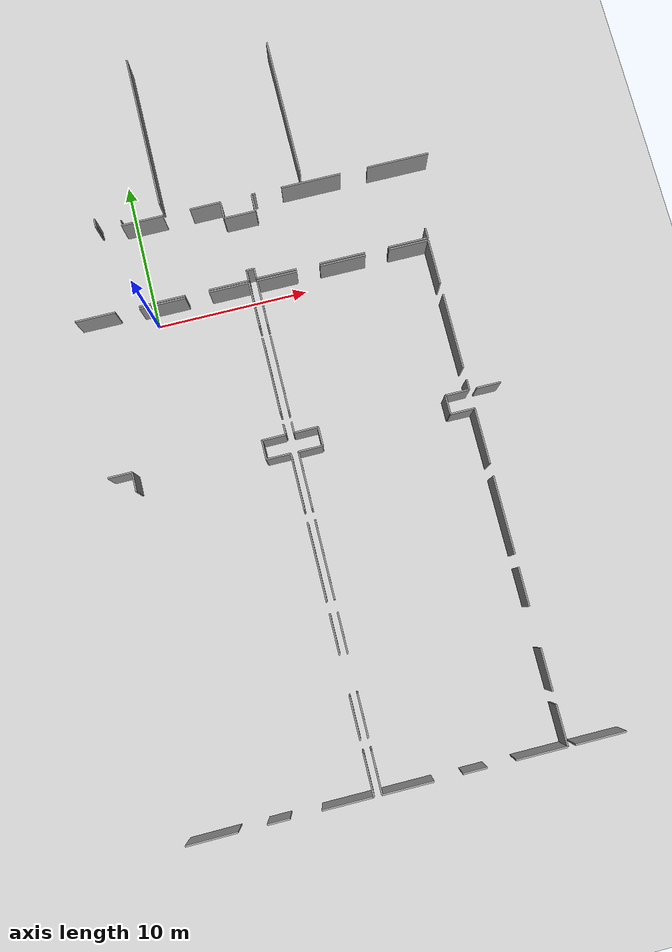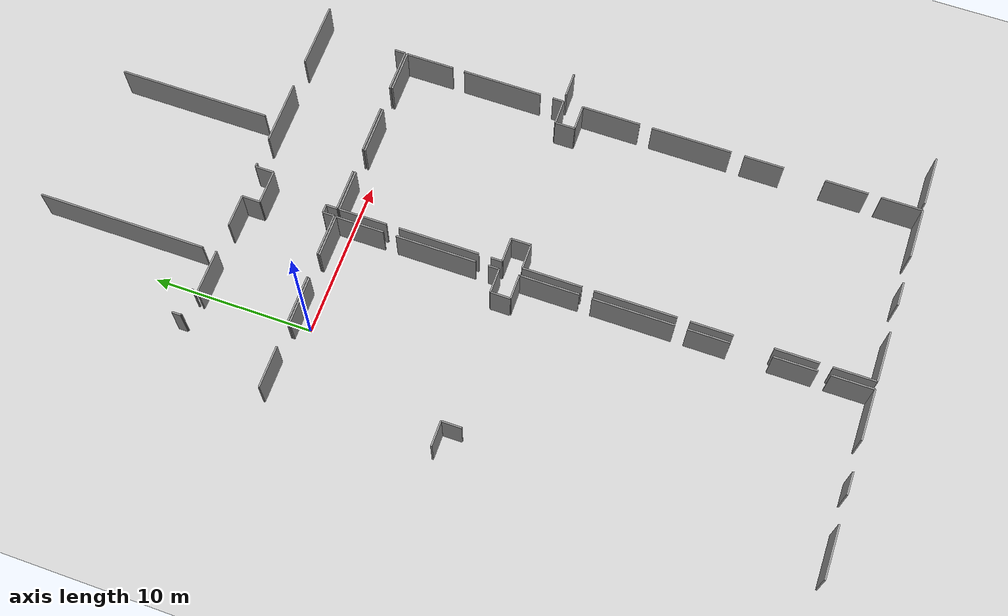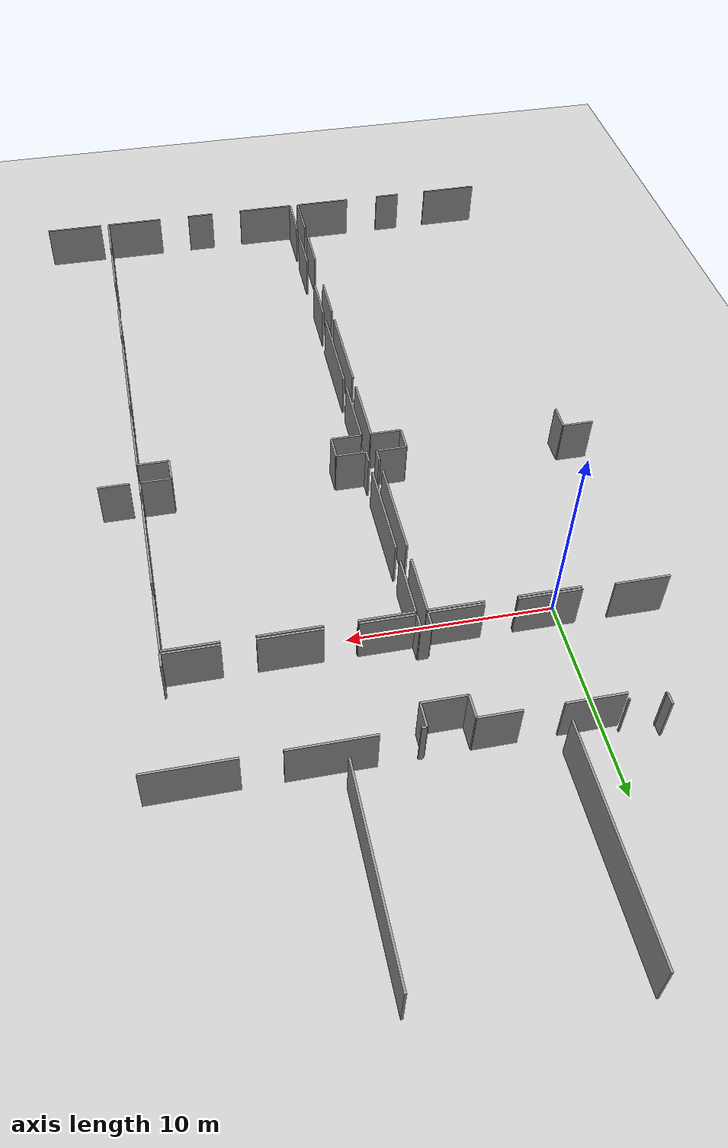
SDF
<sdf version="1.6">
 <world name="default">
  <model name="ground_plane">
   <static>1</static>
   <link name="link">
    <collision name="collision">
     <geometry><plane><normal>0 0 1</normal><size>100 100</size></plane></geometry>
     <surface><friction><ode><mu>100</mu><mu2>50</mu2></ode></friction></surface>
    </collision>
    <visual name="visual">
     <cast_shadows>0</cast_shadows>
     <geometry><plane><normal>0 0 1</normal><size>100 100</size></plane></geometry>
     <material>
      <script><uri>file://media/materials/scripts/gazebo.material</uri><name>Gazebo/Grey</name></script>
     </material>
    </visual>
   </link>
  </model>
  <model name="50052750">
   <static>1</static>
   <link name="Wall_206">
    <collision name="Wall_206_Collision">
     <geometry><box><size>9.51025006319 0.1 2.5</size></box></geometry>
     <pose>4.75512503159 0 1.25 0 0 0</pose>
    </collision>
    <visual name="Wall_206_Visual">
     <pose>4.75512503159 0 1.25 0 0 0</pose>
     <geometry><box><size>9.51025006319 0.1 2.5</size></box></geometry>
     <material>
      <script><uri>file://media/materials/scripts/gazebo.material</uri><name>Gazebo/Grey</name></script>
      <ambient>1 1 1 1</ambient>
     </material>
    </visual>
    <pose>54.0171535039 -25.0771882275 0 0 0 1.57079632679</pose>
   </link>
   <link name="Wall_218">
    <collision name="Wall_218_Collision">
     <geometry><box><size>10.5350658719 0.1 2.5</size></box></geometry>
     <pose>5.26753293597 0 1.25 0 0 0</pose>
    </collision>
    <visual name="Wall_218_Visual">
     <pose>5.26753293597 0 1.25 0 0 0</pose>
     <geometry><box><size>10.5350658719 0.1 2.5</size></box></geometry>
     <material>
      <script><uri>file://media/materials/scripts/gazebo.material</uri><name>Gazebo/Grey</name></script>
      <ambient>1 1 1 1</ambient>
     </material>
    </visual>
    <pose>44.5540228688 -25.072870005 0 0 0 1.57079632679</pose>
   </link>
   <link name="Wall_232">
    <collision name="Wall_232_Collision">
     <geometry><box><size>2.78499951102 0.1 2.5</size></box></geometry>
     <pose>1.39249975551 0 1.25 0 0 0</pose>
    </collision>
    <visual name="Wall_232_Visual">
     <pose>1.39249975551 0 1.25 0 0 0</pose>
     <geometry><box><size>2.78499951102 0.1 2.5</size></box></geometry>
     <material>
      <script><uri>file://media/materials/scripts/gazebo.material</uri><name>Gazebo/Grey</name></script>
      <ambient>1 1 1 1</ambient>
     </material>
    </visual>
    <pose>41.7977268369 -25.9274970439 0 0 0 0.0</pose>
   </link>
   <link name="Wall_233">
    <collision name="Wall_233_Collision">
     <geometry><box><size>2.04544040154 0.1 2.5</size></box></geometry>
     <pose>1.02272020077 0 1.25 0 0 0</pose>
    </collision>
    <visual name="Wall_233_Visual">
     <pose>1.02272020077 0 1.25 0 0 0</pose>
     <geometry><box><size>2.04544040154 0.1 2.5</size></box></geometry>
     <material>
      <script><uri>file://media/materials/scripts/gazebo.material</uri><name>Gazebo/Grey</name></script>
      <ambient>1 1 1 1</ambient>
     </material>
    </visual>
    <pose>46.397903884 -25.9274970439 0 0 0 0.0</pose>
   </link>
   <link name="Wall_234">
    <collision name="Wall_234_Collision">
     <geometry><box><size>1.14280488874 0.1 2.5</size></box></geometry>
     <pose>0.571402444368 0 1.25 0 0 0</pose>
    </collision>
    <visual name="Wall_234_Visual">
     <pose>0.571402444368 0 1.25 0 0 0</pose>
     <geometry><box><size>1.14280488874 0.1 2.5</size></box></geometry>
     <material>
      <script><uri>file://media/materials/scripts/gazebo.material</uri><name>Gazebo/Grey</name></script>
      <ambient>1 1 1 1</ambient>
     </material>
    </visual>
    <pose>48.4433442855 -25.9274970439 0 0 0 -1.57079632679</pose>
   </link>
   <link name="Wall_235">
    <collision name="Wall_235_Collision">
     <geometry><box><size>2.1224063676 0.1 2.5</size></box></geometry>
     <pose>1.0612031838 0 1.25 0 0 0</pose>
    </collision>
    <visual name="Wall_235_Visual">
     <pose>1.0612031838 0 1.25 0 0 0</pose>
     <geometry><box><size>2.1224063676 0.1 2.5</size></box></geometry>
     <material>
      <script><uri>file://media/materials/scripts/gazebo.material</uri><name>Gazebo/Grey</name></script>
      <ambient>1 1 1 1</ambient>
     </material>
    </visual>
    <pose>48.4433442855 -27.0703019327 0 0 0 0.0</pose>
   </link>
   <link name="Wall_236">
    <collision name="Wall_236_Collision">
     <geometry><box><size>1.17163537437 0.1 2.5</size></box></geometry>
     <pose>0.585817687185 0 1.25 0 0 0</pose>
    </collision>
    <visual name="Wall_236_Visual">
     <pose>0.585817687185 0 1.25 0 0 0</pose>
     <geometry><box><size>1.17163537437 0.1 2.5</size></box></geometry>
     <material>
      <script><uri>file://media/materials/scripts/gazebo.material</uri><name>Gazebo/Grey</name></script>
      <ambient>1 1 1 1</ambient>
     </material>
    </visual>
    <pose>50.5657506531 -27.0703019327 0 0 0 1.57079632679</pose>
   </link>
   <link name="Wall_237">
    <collision name="Wall_237_Collision">
     <geometry><box><size>0.240169375928 0.1 2.5</size></box></geometry>
     <pose>0.120084687964 0 1.25 0 0 0</pose>
    </collision>
    <visual name="Wall_237_Visual">
     <pose>0.120084687964 0 1.25 0 0 0</pose>
     <geometry><box><size>0.240169375928 0.1 2.5</size></box></geometry>
     <material>
      <script><uri>file://media/materials/scripts/gazebo.material</uri><name>Gazebo/Grey</name></script>
      <ambient>1 1 1 1</ambient>
     </material>
    </visual>
    <pose>50.5657506531 -25.8986665583 0 0 0 0.0</pose>
   </link>
   <link name="Wall_238">
    <collision name="Wall_238_Collision">
     <geometry><box><size>4.0087075687 0.1 2.5</size></box></geometry>
     <pose>2.00435378435 0 1.25 0 0 0</pose>
    </collision>
    <visual name="Wall_238_Visual">
     <pose>2.00435378435 0 1.25 0 0 0</pose>
     <geometry><box><size>4.0087075687 0.1 2.5</size></box></geometry>
     <material>
      <script><uri>file://media/materials/scripts/gazebo.material</uri><name>Gazebo/Grey</name></script>
      <ambient>1 1 1 1</ambient>
     </material>
    </visual>
    <pose>52.5758832353 -25.8986665583 0 0 0 0.0</pose>
   </link>
   <link name="Wall_239">
    <collision name="Wall_239_Collision">
     <geometry><box><size>4.1725460113 0.1 2.5</size></box></geometry>
     <pose>2.08627300565 0 1.25 0 0 0</pose>
    </collision>
    <visual name="Wall_239_Visual">
     <pose>2.08627300565 0 1.25 0 0 0</pose>
     <geometry><box><size>4.1725460113 0.1 2.5</size></box></geometry>
     <material>
      <script><uri>file://media/materials/scripts/gazebo.material</uri><name>Gazebo/Grey</name></script>
      <ambient>1 1 1 1</ambient>
     </material>
    </visual>
    <pose>58.4094208375 -25.8986665583 0 0 0 0.0</pose>
   </link>
   <link name="Wall_256">
    <collision name="Wall_256_Collision">
     <geometry><box><size>0.680882085854 0.1 2.5</size></box></geometry>
     <pose>0.340441042927 0 1.25 0 0 0</pose>
    </collision>
    <visual name="Wall_256_Visual">
     <pose>0.340441042927 0 1.25 0 0 0</pose>
     <geometry><box><size>0.680882085854 0.1 2.5</size></box></geometry>
     <material>
      <script><uri>file://media/materials/scripts/gazebo.material</uri><name>Gazebo/Grey</name></script>
      <ambient>1 1 1 1</ambient>
     </material>
    </visual>
    <pose>61.0774473209 -30.9079316857 0 0 0 -1.57079632679</pose>
   </link>
   <link name="Wall_257">
    <collision name="Wall_257_Collision">
     <geometry><box><size>2.673995791 0.1 2.5</size></box></geometry>
     <pose>1.3369978955 0 1.25 0 0 0</pose>
    </collision>
    <visual name="Wall_257_Visual">
     <pose>1.3369978955 0 1.25 0 0 0</pose>
     <geometry><box><size>2.673995791 0.1 2.5</size></box></geometry>
     <material>
      <script><uri>file://media/materials/scripts/gazebo.material</uri><name>Gazebo/Grey</name></script>
      <ambient>1 1 1 1</ambient>
     </material>
    </visual>
    <pose>61.0774473209 -31.5888137716 0 0 0 3.14159265359</pose>
   </link>
   <link name="Wall_258">
    <collision name="Wall_258_Collision">
     <geometry><box><size>3.0312652011 0.1 2.5</size></box></geometry>
     <pose>1.51563260055 0 1.25 0 0 0</pose>
    </collision>
    <visual name="Wall_258_Visual">
     <pose>1.51563260055 0 1.25 0 0 0</pose>
     <geometry><box><size>3.0312652011 0.1 2.5</size></box></geometry>
     <material>
      <script><uri>file://media/materials/scripts/gazebo.material</uri><name>Gazebo/Grey</name></script>
      <ambient>1 1 1 1</ambient>
     </material>
    </visual>
    <pose>56.8209499836 -31.5888137716 0 0 0 3.14159265359</pose>
   </link>
   <link name="Wall_259">
    <collision name="Wall_259_Collision">
     <geometry><box><size>2.64999155406 0.1 2.5</size></box></geometry>
     <pose>1.32499577703 0 1.25 0 0 0</pose>
    </collision>
    <visual name="Wall_259_Visual">
     <pose>1.32499577703 0 1.25 0 0 0</pose>
     <geometry><box><size>2.64999155406 0.1 2.5</size></box></geometry>
     <material>
      <script><uri>file://media/materials/scripts/gazebo.material</uri><name>Gazebo/Grey</name></script>
      <ambient>1 1 1 1</ambient>
     </material>
    </visual>
    <pose>52.2165817205 -31.5888137716 0 0 0 3.14159265359</pose>
   </link>
   <link name="Wall_260">
    <collision name="Wall_260_Collision">
     <geometry><box><size>0.695487838488 0.1 2.5</size></box></geometry>
     <pose>0.347743919244 0 1.25 0 0 0</pose>
    </collision>
    <visual name="Wall_260_Visual">
     <pose>0.347743919244 0 1.25 0 0 0</pose>
     <geometry><box><size>0.695487838488 0.1 2.5</size></box></geometry>
     <material>
      <script><uri>file://media/materials/scripts/gazebo.material</uri><name>Gazebo/Grey</name></script>
      <ambient>1 1 1 1</ambient>
     </material>
    </visual>
    <pose>49.5665901664 -31.5888137716 0 0 0 1.57079632679</pose>
   </link>
   <link name="Wall_261">
    <collision name="Wall_261_Collision">
     <geometry><box><size>0.505486047696 0.1 2.5</size></box></geometry>
     <pose>0.252743023848 0 1.25 0 0 0</pose>
    </collision>
    <visual name="Wall_261_Visual">
     <pose>0.252743023848 0 1.25 0 0 0</pose>
     <geometry><box><size>0.505486047696 0.1 2.5</size></box></geometry>
     <material>
      <script><uri>file://media/materials/scripts/gazebo.material</uri><name>Gazebo/Grey</name></script>
      <ambient>1 1 1 1</ambient>
     </material>
    </visual>
    <pose>49.5665901664 -30.8933259331 0 0 0 3.14159265359</pose>
   </link>
   <link name="Wall_262">
    <collision name="Wall_262_Collision">
     <geometry><box><size>0.714792833275 0.1 2.5</size></box></geometry>
     <pose>0.357396416637 0 1.25 0 0 0</pose>
    </collision>
    <visual name="Wall_262_Visual">
     <pose>0.357396416637 0 1.25 0 0 0</pose>
     <geometry><box><size>0.714792833275 0.1 2.5</size></box></geometry>
     <material>
      <script><uri>file://media/materials/scripts/gazebo.material</uri><name>Gazebo/Grey</name></script>
      <ambient>1 1 1 1</ambient>
     </material>
    </visual>
    <pose>49.0611041187 -30.8933259331 0 0 0 -1.57079632679</pose>
   </link>
   <link name="Wall_263">
    <collision name="Wall_263_Collision">
     <geometry><box><size>2.66066010382 0.1 2.5</size></box></geometry>
     <pose>1.33033005191 0 1.25 0 0 0</pose>
    </collision>
    <visual name="Wall_263_Visual">
     <pose>1.33033005191 0 1.25 0 0 0</pose>
     <geometry><box><size>2.66066010382 0.1 2.5</size></box></geometry>
     <material>
      <script><uri>file://media/materials/scripts/gazebo.material</uri><name>Gazebo/Grey</name></script>
      <ambient>1 1 1 1</ambient>
     </material>
    </visual>
    <pose>49.0611041187 -31.6081187664 0 0 0 3.14159265359</pose>
   </link>
   <link name="Wall_264">
    <collision name="Wall_264_Collision">
     <geometry><box><size>3.05615848385 0.1 2.5</size></box></geometry>
     <pose>1.52807924192 0 1.25 0 0 0</pose>
    </collision>
    <visual name="Wall_264_Visual">
     <pose>1.52807924192 0 1.25 0 0 0</pose>
     <geometry><box><size>3.05615848385 0.1 2.5</size></box></geometry>
     <material>
      <script><uri>file://media/materials/scripts/gazebo.material</uri><name>Gazebo/Grey</name></script>
      <ambient>1 1 1 1</ambient>
     </material>
    </visual>
    <pose>44.8333102605 -31.6081187664 0 0 0 3.14159265359</pose>
   </link>
   <link name="Wall_265">
    <collision name="Wall_265_Collision">
     <geometry><box><size>2.65049958024 0.1 2.5</size></box></geometry>
     <pose>1.32524979012 0 1.25 0 0 0</pose>
    </collision>
    <visual name="Wall_265_Visual">
     <pose>1.32524979012 0 1.25 0 0 0</pose>
     <geometry><box><size>2.65049958024 0.1 2.5</size></box></geometry>
     <material>
      <script><uri>file://media/materials/scripts/gazebo.material</uri><name>Gazebo/Grey</name></script>
      <ambient>1 1 1 1</ambient>
     </material>
    </visual>
    <pose>40.209255983 -31.6081187664 0 0 0 3.14159265359</pose>
   </link>
   <link name="Wall_335">
    <collision name="Wall_335_Collision">
     <geometry><box><size>0.0758229071544 0.1 2.5</size></box></geometry>
     <pose>0.0379114535772 0 1.25 0 0 0</pose>
    </collision>
    <visual name="Wall_335_Visual">
     <pose>0.0379114535772 0 1.25 0 0 0</pose>
     <geometry><box><size>0.0758229071544 0.1 2.5</size></box></geometry>
     <material>
      <script><uri>file://media/materials/scripts/gazebo.material</uri><name>Gazebo/Grey</name></script>
      <ambient>1 1 1 1</ambient>
     </material>
    </visual>
    <pose>41.8971729613 -25.6195061732 0 0 0 3.14159265359</pose>
   </link>
   <link name="Wall_336">
    <collision name="Wall_336_Collision">
     <geometry><box><size>0.0751878744312 0.1 2.5</size></box></geometry>
     <pose>0.0375939372156 0 1.25 0 0 0</pose>
    </collision>
    <visual name="Wall_336_Visual">
     <pose>0.0375939372156 0 1.25 0 0 0</pose>
     <geometry><box><size>0.0751878744312 0.1 2.5</size></box></geometry>
     <material>
      <script><uri>file://media/materials/scripts/gazebo.material</uri><name>Gazebo/Grey</name></script>
      <ambient>1 1 1 1</ambient>
     </material>
    </visual>
    <pose>40.2361813704 -25.6195061732 0 0 0 3.14159265359</pose>
   </link>
   <link name="Wall_337">
    <collision name="Wall_337_Collision">
     <geometry><box><size>0.565941162948 0.1 2.5</size></box></geometry>
     <pose>0.282970581474 0 1.25 0 0 0</pose>
    </collision>
    <visual name="Wall_337_Visual">
     <pose>0.282970581474 0 1.25 0 0 0</pose>
     <geometry><box><size>0.565941162948 0.1 2.5</size></box></geometry>
     <material>
      <script><uri>file://media/materials/scripts/gazebo.material</uri><name>Gazebo/Grey</name></script>
      <ambient>1 1 1 1</ambient>
     </material>
    </visual>
    <pose>40.160993496 -25.6195061732 0 0 0 1.57079632679</pose>
   </link>
   <link name="Wall_460">
    <collision name="Wall_460_Collision">
     <geometry><box><size>1.25660275274 0.1 2.5</size></box></geometry>
     <pose>0.62830137637 0 1.25 0 0 0</pose>
    </collision>
    <visual name="Wall_460_Visual">
     <pose>0.62830137637 0 1.25 0 0 0</pose>
     <geometry><box><size>1.25660275274 0.1 2.5</size></box></geometry>
     <material>
      <script><uri>file://media/materials/scripts/gazebo.material</uri><name>Gazebo/Grey</name></script>
      <ambient>1 1 1 1</ambient>
     </material>
    </visual>
    <pose>39.1124274634 -43.299960247 0 0 0 1.57079632679</pose>
   </link>
   <link name="Wall_461">
    <collision name="Wall_461_Collision">
     <geometry><box><size>1.57234102273 0.1 2.5</size></box></geometry>
     <pose>0.786170511366 0 1.25 0 0 0</pose>
    </collision>
    <visual name="Wall_461_Visual">
     <pose>0.786170511366 0 1.25 0 0 0</pose>
     <geometry><box><size>1.57234102273 0.1 2.5</size></box></geometry>
     <material>
      <script><uri>file://media/materials/scripts/gazebo.material</uri><name>Gazebo/Grey</name></script>
      <ambient>1 1 1 1</ambient>
     </material>
    </visual>
    <pose>39.1124274634 -42.0433574942 0 0 0 3.14159265359</pose>
   </link>
   <link name="Wall_466">
    <collision name="Wall_466_Collision">
     <geometry><box><size>3.03532941052 0.1 2.5</size></box></geometry>
     <pose>1.51766470526 0 1.25 0 0 0</pose>
    </collision>
    <visual name="Wall_466_Visual">
     <pose>1.51766470526 0 1.25 0 0 0</pose>
     <geometry><box><size>3.03532941052 0.1 2.5</size></box></geometry>
     <material>
      <script><uri>file://media/materials/scripts/gazebo.material</uri><name>Gazebo/Grey</name></script>
      <ambient>1 1 1 1</ambient>
     </material>
    </visual>
    <pose>41.7777868094 -31.7381734681 0 0 0 0.0</pose>
   </link>
   <link name="Wall_467">
    <collision name="Wall_467_Collision">
     <geometry><box><size>2.65837398601 0.1 2.5</size></box></geometry>
     <pose>1.32918699301 0 1.25 0 0 0</pose>
    </collision>
    <visual name="Wall_467_Visual">
     <pose>1.32918699301 0 1.25 0 0 0</pose>
     <geometry><box><size>2.65837398601 0.1 2.5</size></box></geometry>
     <material>
      <script><uri>file://media/materials/scripts/gazebo.material</uri><name>Gazebo/Grey</name></script>
      <ambient>1 1 1 1</ambient>
     </material>
    </visual>
    <pose>46.3803769808 -31.7381734681 0 0 0 0.0</pose>
   </link>
   <link name="Wall_468">
    <collision name="Wall_468_Collision">
     <geometry><box><size>3.02262875606 0.1 2.5</size></box></geometry>
     <pose>1.51131437803 0 1.25 0 0 0</pose>
    </collision>
    <visual name="Wall_468_Visual">
     <pose>1.51131437803 0 1.25 0 0 0</pose>
     <geometry><box><size>3.02262875606 0.1 2.5</size></box></geometry>
     <material>
      <script><uri>file://media/materials/scripts/gazebo.material</uri><name>Gazebo/Grey</name></script>
      <ambient>1 1 1 1</ambient>
     </material>
    </visual>
    <pose>49.0387509668 -31.7381734681 0 0 0 -1.57079632679</pose>
   </link>
   <link name="Wall_469">
    <collision name="Wall_469_Collision">
     <geometry><box><size>5.00977315361 0.1 2.5</size></box></geometry>
     <pose>2.50488657681 0 1.25 0 0 0</pose>
    </collision>
    <visual name="Wall_469_Visual">
     <pose>2.50488657681 0 1.25 0 0 0</pose>
     <geometry><box><size>5.00977315361 0.1 2.5</size></box></geometry>
     <material>
      <script><uri>file://media/materials/scripts/gazebo.material</uri><name>Gazebo/Grey</name></script>
      <ambient>1 1 1 1</ambient>
     </material>
    </visual>
    <pose>49.0387509668 -35.564118619 0 0 0 -1.57079632679</pose>
   </link>
   <link name="Wall_470">
    <collision name="Wall_470_Collision">
     <geometry><box><size>0.685581328006 0.1 2.5</size></box></geometry>
     <pose>0.342790664003 0 1.25 0 0 0</pose>
    </collision>
    <visual name="Wall_470_Visual">
     <pose>0.342790664003 0 1.25 0 0 0</pose>
     <geometry><box><size>0.685581328006 0.1 2.5</size></box></geometry>
     <material>
      <script><uri>file://media/materials/scripts/gazebo.material</uri><name>Gazebo/Grey</name></script>
      <ambient>1 1 1 1</ambient>
     </material>
    </visual>
    <pose>49.0387509668 -41.3479966623 0 0 0 -1.57079632679</pose>
   </link>
   <link name="Wall_471">
    <collision name="Wall_471_Collision">
     <geometry><box><size>1.55760826355 0.1 2.5</size></box></geometry>
     <pose>0.778804131777 0 1.25 0 0 0</pose>
    </collision>
    <visual name="Wall_471_Visual">
     <pose>0.778804131777 0 1.25 0 0 0</pose>
     <geometry><box><size>1.55760826355 0.1 2.5</size></box></geometry>
     <material>
      <script><uri>file://media/materials/scripts/gazebo.material</uri><name>Gazebo/Grey</name></script>
      <ambient>1 1 1 1</ambient>
     </material>
    </visual>
    <pose>49.0387509668 -42.0335779903 0 0 0 3.14159265359</pose>
   </link>
   <link name="Wall_472">
    <collision name="Wall_472_Collision">
     <geometry><box><size>1.24745828153 0.1 2.5</size></box></geometry>
     <pose>0.623729140763 0 1.25 0 0 0</pose>
    </collision>
    <visual name="Wall_472_Visual">
     <pose>0.623729140763 0 1.25 0 0 0</pose>
     <geometry><box><size>1.24745828153 0.1 2.5</size></box></geometry>
     <material>
      <script><uri>file://media/materials/scripts/gazebo.material</uri><name>Gazebo/Grey</name></script>
      <ambient>1 1 1 1</ambient>
     </material>
    </visual>
    <pose>47.4811427033 -42.0335779903 0 0 0 -1.57079632679</pose>
   </link>
   <link name="Wall_473">
    <collision name="Wall_473_Collision">
     <geometry><box><size>1.57691325834 0.1 2.5</size></box></geometry>
     <pose>0.78845662917 0 1.25 0 0 0</pose>
    </collision>
    <visual name="Wall_473_Visual">
     <pose>0.78845662917 0 1.25 0 0 0</pose>
     <geometry><box><size>1.57691325834 0.1 2.5</size></box></geometry>
     <material>
      <script><uri>file://media/materials/scripts/gazebo.material</uri><name>Gazebo/Grey</name></script>
      <ambient>1 1 1 1</ambient>
     </material>
    </visual>
    <pose>47.4811427033 -43.2810362718 0 0 0 0.0</pose>
   </link>
   <link name="Wall_474">
    <collision name="Wall_474_Collision">
     <geometry><box><size>3.70694001862 0.1 2.5</size></box></geometry>
     <pose>1.85347000931 0 1.25 0 0 0</pose>
    </collision>
    <visual name="Wall_474_Visual">
     <pose>1.85347000931 0 1.25 0 0 0</pose>
     <geometry><box><size>3.70694001862 0.1 2.5</size></box></geometry>
     <material>
      <script><uri>file://media/materials/scripts/gazebo.material</uri><name>Gazebo/Grey</name></script>
      <ambient>1 1 1 1</ambient>
     </material>
    </visual>
    <pose>49.0580559616 -43.2810362718 0 0 0 -1.57079632679</pose>
   </link>
   <link name="Wall_475">
    <collision name="Wall_475_Collision">
     <geometry><box><size>5.04190580941 0.1 2.5</size></box></geometry>
     <pose>2.5209529047 0 1.25 0 0 0</pose>
    </collision>
    <visual name="Wall_475_Visual">
     <pose>2.5209529047 0 1.25 0 0 0</pose>
     <geometry><box><size>5.04190580941 0.1 2.5</size></box></geometry>
     <material>
      <script><uri>file://media/materials/scripts/gazebo.material</uri><name>Gazebo/Grey</name></script>
      <ambient>1 1 1 1</ambient>
     </material>
    </visual>
    <pose>49.0580559616 -47.7467133881 0 0 0 -1.57079632679</pose>
   </link>
   <link name="Wall_476">
    <collision name="Wall_476_Collision">
     <geometry><box><size>2.57378762728 0.1 2.5</size></box></geometry>
     <pose>1.28689381364 0 1.25 0 0 0</pose>
    </collision>
    <visual name="Wall_476_Visual">
     <pose>1.28689381364 0 1.25 0 0 0</pose>
     <geometry><box><size>2.57378762728 0.1 2.5</size></box></geometry>
     <material>
      <script><uri>file://media/materials/scripts/gazebo.material</uri><name>Gazebo/Grey</name></script>
      <ambient>1 1 1 1</ambient>
     </material>
    </visual>
    <pose>49.0580559616 -53.5280513005 0 0 0 -1.57079632679</pose>
   </link>
   <link name="Wall_477">
    <collision name="Wall_477_Collision">
     <geometry><box><size>2.66561335906 0.1 2.5</size></box></geometry>
     <pose>1.33280667953 0 1.25 0 0 0</pose>
    </collision>
    <visual name="Wall_477_Visual">
     <pose>1.33280667953 0 1.25 0 0 0</pose>
     <geometry><box><size>2.66561335906 0.1 2.5</size></box></geometry>
     <material>
      <script><uri>file://media/materials/scripts/gazebo.material</uri><name>Gazebo/Grey</name></script>
      <ambient>1 1 1 1</ambient>
     </material>
    </visual>
    <pose>49.0580559616 -58.6210137408 0 0 0 -1.57079632679</pose>
   </link>
   <link name="Wall_478">
    <collision name="Wall_478_Collision">
     <geometry><box><size>2.56908838512 0.1 2.5</size></box></geometry>
     <pose>1.28454419256 0 1.25 0 0 0</pose>
    </collision>
    <visual name="Wall_478_Visual">
     <pose>1.28454419256 0 1.25 0 0 0</pose>
     <geometry><box><size>2.56908838512 0.1 2.5</size></box></geometry>
     <material>
      <script><uri>file://media/materials/scripts/gazebo.material</uri><name>Gazebo/Grey</name></script>
      <ambient>1 1 1 1</ambient>
     </material>
    </visual>
    <pose>49.0580559616 -62.0399029162 0 0 0 -1.57079632679</pose>
   </link>
   <link name="Wall_479">
    <collision name="Wall_479_Collision">
     <geometry><box><size>3.19561166987 0.1 2.5</size></box></geometry>
     <pose>1.59780583493 0 1.25 0 0 0</pose>
    </collision>
    <visual name="Wall_479_Visual">
     <pose>1.59780583493 0 1.25 0 0 0</pose>
     <geometry><box><size>3.19561166987 0.1 2.5</size></box></geometry>
     <material>
      <script><uri>file://media/materials/scripts/gazebo.material</uri><name>Gazebo/Grey</name></script>
      <ambient>1 1 1 1</ambient>
     </material>
    </visual>
    <pose>49.0580559616 -64.6089913013 0 0 0 3.14159265359</pose>
   </link>
   <link name="Wall_480">
    <collision name="Wall_480_Collision">
     <geometry><box><size>1.41015366522 0.1 2.5</size></box></geometry>
     <pose>0.705076832609 0 1.25 0 0 0</pose>
    </collision>
    <visual name="Wall_480_Visual">
     <pose>0.705076832609 0 1.25 0 0 0</pose>
     <geometry><box><size>1.41015366522 0.1 2.5</size></box></geometry>
     <material>
      <script><uri>file://media/materials/scripts/gazebo.material</uri><name>Gazebo/Grey</name></script>
      <ambient>1 1 1 1</ambient>
     </material>
    </visual>
    <pose>43.9309287608 -64.6089913013 0 0 0 3.14159265359</pose>
   </link>
   <link name="Wall_481">
    <collision name="Wall_481_Collision">
     <geometry><box><size>3.22665901785 0.1 2.5</size></box></geometry>
     <pose>1.61332950893 0 1.25 0 0 0</pose>
    </collision>
    <visual name="Wall_481_Visual">
     <pose>1.61332950893 0 1.25 0 0 0</pose>
     <geometry><box><size>3.22665901785 0.1 2.5</size></box></geometry>
     <material>
      <script><uri>file://media/materials/scripts/gazebo.material</uri><name>Gazebo/Grey</name></script>
      <ambient>1 1 1 1</ambient>
     </material>
    </visual>
    <pose>40.7638935634 -64.6089913013 0 0 0 -3.13560965078</pose>
   </link>
   <link name="Wall_482">
    <collision name="Wall_482_Collision">
     <geometry><box><size>2.5909335108 0.1 2.5</size></box></geometry>
     <pose>1.2954667554 0 1.25 0 0 0</pose>
    </collision>
    <visual name="Wall_482_Visual">
     <pose>1.2954667554 0 1.25 0 0 0</pose>
     <geometry><box><size>2.5909335108 0.1 2.5</size></box></geometry>
     <material>
      <script><uri>file://media/materials/scripts/gazebo.material</uri><name>Gazebo/Grey</name></script>
      <ambient>1 1 1 1</ambient>
     </material>
    </visual>
    <pose>49.5579537214 -64.6136905435 0 0 0 1.57079632679</pose>
   </link>
   <link name="Wall_483">
    <collision name="Wall_483_Collision">
     <geometry><box><size>2.70333430282 0.1 2.5</size></box></geometry>
     <pose>1.35166715141 0 1.25 0 0 0</pose>
    </collision>
    <visual name="Wall_483_Visual">
     <pose>1.35166715141 0 1.25 0 0 0</pose>
     <geometry><box><size>2.70333430282 0.1 2.5</size></box></geometry>
     <material>
      <script><uri>file://media/materials/scripts/gazebo.material</uri><name>Gazebo/Grey</name></script>
      <ambient>1 1 1 1</ambient>
     </material>
    </visual>
    <pose>49.5579537214 -61.2607177648 0 0 0 1.57079632679</pose>
   </link>
   <link name="Wall_484">
    <collision name="Wall_484_Collision">
     <geometry><box><size>2.60363416527 0.1 2.5</size></box></geometry>
     <pose>1.30181708263 0 1.25 0 0 0</pose>
    </collision>
    <visual name="Wall_484_Visual">
     <pose>1.30181708263 0 1.25 0 0 0</pose>
     <geometry><box><size>2.60363416527 0.1 2.5</size></box></geometry>
     <material>
      <script><uri>file://media/materials/scripts/gazebo.material</uri><name>Gazebo/Grey</name></script>
      <ambient>1 1 1 1</ambient>
     </material>
    </visual>
    <pose>49.5579537214 -56.1423540155 0 0 0 1.57079632679</pose>
   </link>
   <link name="Wall_485">
    <collision name="Wall_485_Collision">
     <geometry><box><size>5.06756113143 0.1 2.5</size></box></geometry>
     <pose>2.53378056571 0 1.25 0 0 0</pose>
    </collision>
    <visual name="Wall_485_Visual">
     <pose>2.53378056571 0 1.25 0 0 0</pose>
     <geometry><box><size>5.06756113143 0.1 2.5</size></box></geometry>
     <material>
      <script><uri>file://media/materials/scripts/gazebo.material</uri><name>Gazebo/Grey</name></script>
      <ambient>1 1 1 1</ambient>
     </material>
    </visual>
    <pose>49.5579537214 -52.7766805824 0 0 0 1.57079632679</pose>
   </link>
   <link name="Wall_486">
    <collision name="Wall_486_Collision">
     <geometry><box><size>3.69589044923 0.1 2.5</size></box></geometry>
     <pose>1.84794522462 0 1.25 0 0 0</pose>
    </collision>
    <visual name="Wall_486_Visual">
     <pose>1.84794522462 0 1.25 0 0 0</pose>
     <geometry><box><size>3.69589044923 0.1 2.5</size></box></geometry>
     <material>
      <script><uri>file://media/materials/scripts/gazebo.material</uri><name>Gazebo/Grey</name></script>
      <ambient>1 1 1 1</ambient>
     </material>
    </visual>
    <pose>49.5579537214 -46.9851821464 0 0 0 1.57079632679</pose>
   </link>
   <link name="Wall_487">
    <collision name="Wall_487_Collision">
     <geometry><box><size>1.57488115363 0.1 2.5</size></box></geometry>
     <pose>0.787440576813 0 1.25 0 0 0</pose>
    </collision>
    <visual name="Wall_487_Visual">
     <pose>0.787440576813 0 1.25 0 0 0</pose>
     <geometry><box><size>1.57488115363 0.1 2.5</size></box></geometry>
     <material>
      <script><uri>file://media/materials/scripts/gazebo.material</uri><name>Gazebo/Grey</name></script>
      <ambient>1 1 1 1</ambient>
     </material>
    </visual>
    <pose>49.5579537214 -43.2892916972 0 0 0 0.0</pose>
   </link>
   <link name="Wall_488">
    <collision name="Wall_488_Collision">
     <geometry><box><size>1.24466413754 0.1 2.5</size></box></geometry>
     <pose>0.622332068772 0 1.25 0 0 0</pose>
    </collision>
    <visual name="Wall_488_Visual">
     <pose>0.622332068772 0 1.25 0 0 0</pose>
     <geometry><box><size>1.24466413754 0.1 2.5</size></box></geometry>
     <material>
      <script><uri>file://media/materials/scripts/gazebo.material</uri><name>Gazebo/Grey</name></script>
      <ambient>1 1 1 1</ambient>
     </material>
    </visual>
    <pose>51.132834875 -43.2892916972 0 0 0 1.57079632679</pose>
   </link>
   <link name="Wall_489">
    <collision name="Wall_489_Collision">
     <geometry><box><size>1.56218049916 0.1 2.5</size></box></geometry>
     <pose>0.781090249581 0 1.25 0 0 0</pose>
    </collision>
    <visual name="Wall_489_Visual">
     <pose>0.781090249581 0 1.25 0 0 0</pose>
     <geometry><box><size>1.56218049916 0.1 2.5</size></box></geometry>
     <material>
      <script><uri>file://media/materials/scripts/gazebo.material</uri><name>Gazebo/Grey</name></script>
      <ambient>1 1 1 1</ambient>
     </material>
    </visual>
    <pose>51.132834875 -42.0446275597 0 0 0 3.14159265359</pose>
   </link>
   <link name="Wall_490">
    <collision name="Wall_490_Collision">
     <geometry><box><size>0.711236650025 0.1 2.5</size></box></geometry>
     <pose>0.355618325012 0 1.25 0 0 0</pose>
    </collision>
    <visual name="Wall_490_Visual">
     <pose>0.355618325012 0 1.25 0 0 0</pose>
     <geometry><box><size>0.711236650025 0.1 2.5</size></box></geometry>
     <material>
      <script><uri>file://media/materials/scripts/gazebo.material</uri><name>Gazebo/Grey</name></script>
      <ambient>1 1 1 1</ambient>
     </material>
    </visual>
    <pose>49.5706543758 -42.0446275597 0 0 0 1.57079632679</pose>
   </link>
   <link name="Wall_491">
    <collision name="Wall_491_Collision">
     <geometry><box><size>5.04914518245 0.1 2.5</size></box></geometry>
     <pose>2.52457259123 0 1.25 0 0 0</pose>
    </collision>
    <visual name="Wall_491_Visual">
     <pose>2.52457259123 0 1.25 0 0 0</pose>
     <geometry><box><size>5.04914518245 0.1 2.5</size></box></geometry>
     <material>
      <script><uri>file://media/materials/scripts/gazebo.material</uri><name>Gazebo/Grey</name></script>
      <ambient>1 1 1 1</ambient>
     </material>
    </visual>
    <pose>49.5706543758 -40.5840522962 0 0 0 1.57079632679</pose>
   </link>
   <link name="Wall_492">
    <collision name="Wall_492_Collision">
     <geometry><box><size>3.02453385423 0.1 2.5</size></box></geometry>
     <pose>1.51226692711 0 1.25 0 0 0</pose>
    </collision>
    <visual name="Wall_492_Visual">
     <pose>1.51226692711 0 1.25 0 0 0</pose>
     <geometry><box><size>3.02453385423 0.1 2.5</size></box></geometry>
     <material>
      <script><uri>file://media/materials/scripts/gazebo.material</uri><name>Gazebo/Grey</name></script>
      <ambient>1 1 1 1</ambient>
     </material>
    </visual>
    <pose>49.5706543758 -34.7621992961 0 0 0 1.57079632679</pose>
   </link>
   <link name="Wall_493">
    <collision name="Wall_493_Collision">
     <geometry><box><size>2.65646888784 0.1 2.5</size></box></geometry>
     <pose>1.32823444392 0 1.25 0 0 0</pose>
    </collision>
    <visual name="Wall_493_Visual">
     <pose>1.32823444392 0 1.25 0 0 0</pose>
     <geometry><box><size>2.65646888784 0.1 2.5</size></box></geometry>
     <material>
      <script><uri>file://media/materials/scripts/gazebo.material</uri><name>Gazebo/Grey</name></script>
      <ambient>1 1 1 1</ambient>
     </material>
    </visual>
    <pose>49.5706543758 -31.7376654419 0 0 0 0.0</pose>
   </link>
   <link name="Wall_494">
    <collision name="Wall_494_Collision">
     <geometry><box><size>3.03710750215 0.1 2.5</size></box></geometry>
     <pose>1.51855375107 0 1.25 0 0 0</pose>
    </collision>
    <visual name="Wall_494_Visual">
     <pose>1.51855375107 0 1.25 0 0 0</pose>
     <geometry><box><size>3.03710750215 0.1 2.5</size></box></geometry>
     <material>
      <script><uri>file://media/materials/scripts/gazebo.material</uri><name>Gazebo/Grey</name></script>
      <ambient>1 1 1 1</ambient>
     </material>
    </visual>
    <pose>53.7762220887 -31.7376654419 0 0 0 0.0</pose>
   </link>
   <link name="Wall_495">
    <collision name="Wall_495_Collision">
     <geometry><box><size>2.65062658679 0.1 2.5</size></box></geometry>
     <pose>1.32531329339 0 1.25 0 0 0</pose>
    </collision>
    <visual name="Wall_495_Visual">
     <pose>1.32531329339 0 1.25 0 0 0</pose>
     <geometry><box><size>2.65062658679 0.1 2.5</size></box></geometry>
     <material>
      <script><uri>file://media/materials/scripts/gazebo.material</uri><name>Gazebo/Grey</name></script>
      <ambient>1 1 1 1</ambient>
     </material>
    </visual>
    <pose>58.4021814644 -31.7376654419 0 0 0 0.0</pose>
   </link>
   <link name="Wall_496">
    <collision name="Wall_496_Collision">
     <geometry><box><size>3.03634546288 0.1 2.5</size></box></geometry>
     <pose>1.51817273144 0 1.25 0 0 0</pose>
    </collision>
    <visual name="Wall_496_Visual">
     <pose>1.51817273144 0 1.25 0 0 0</pose>
     <geometry><box><size>3.03634546288 0.1 2.5</size></box></geometry>
     <material>
      <script><uri>file://media/materials/scripts/gazebo.material</uri><name>Gazebo/Grey</name></script>
      <ambient>1 1 1 1</ambient>
     </material>
    </visual>
    <pose>61.0528080512 -31.7376654419 0 0 0 -1.57079632679</pose>
   </link>
   <link name="Wall_497">
    <collision name="Wall_497_Collision">
     <geometry><box><size>5.00710601617 0.1 2.5</size></box></geometry>
     <pose>2.50355300809 0 1.25 0 0 0</pose>
    </collision>
    <visual name="Wall_497_Visual">
     <pose>2.50355300809 0 1.25 0 0 0</pose>
     <geometry><box><size>5.00710601617 0.1 2.5</size></box></geometry>
     <material>
      <script><uri>file://media/materials/scripts/gazebo.material</uri><name>Gazebo/Grey</name></script>
      <ambient>1 1 1 1</ambient>
     </material>
    </visual>
    <pose>61.0528080512 -35.534018068 0 0 0 -1.57079632679</pose>
   </link>
   <link name="Wall_498">
    <collision name="Wall_498_Collision">
     <geometry><box><size>0.681898138211 0.1 2.5</size></box></geometry>
     <pose>0.340949069106 0 1.25 0 0 0</pose>
    </collision>
    <visual name="Wall_498_Visual">
     <pose>0.340949069106 0 1.25 0 0 0</pose>
     <geometry><box><size>0.681898138211 0.1 2.5</size></box></geometry>
     <material>
      <script><uri>file://media/materials/scripts/gazebo.material</uri><name>Gazebo/Grey</name></script>
      <ambient>1 1 1 1</ambient>
     </material>
    </visual>
    <pose>61.0528080512 -41.3411383089 0 0 0 -1.57079632679</pose>
   </link>
   <link name="Wall_499">
    <collision name="Wall_499_Collision">
     <geometry><box><size>1.57500816017 0.1 2.5</size></box></geometry>
     <pose>0.787504080085 0 1.25 0 0 0</pose>
    </collision>
    <visual name="Wall_499_Visual">
     <pose>0.787504080085 0 1.25 0 0 0</pose>
     <geometry><box><size>1.57500816017 0.1 2.5</size></box></geometry>
     <material>
      <script><uri>file://media/materials/scripts/gazebo.material</uri><name>Gazebo/Grey</name></script>
      <ambient>1 1 1 1</ambient>
     </material>
    </visual>
    <pose>61.0528080512 -42.0230364471 0 0 0 3.14159265359</pose>
   </link>
   <link name="Wall_500">
    <collision name="Wall_500_Collision">
     <geometry><box><size>1.24847433388 0.1 2.5</size></box></geometry>
     <pose>0.624237166941 0 1.25 0 0 0</pose>
    </collision>
    <visual name="Wall_500_Visual">
     <pose>0.624237166941 0 1.25 0 0 0</pose>
     <geometry><box><size>1.24847433388 0.1 2.5</size></box></geometry>
     <material>
      <script><uri>file://media/materials/scripts/gazebo.material</uri><name>Gazebo/Grey</name></script>
      <ambient>1 1 1 1</ambient>
     </material>
    </visual>
    <pose>59.477799891 -42.0230364471 0 0 0 -1.57079632679</pose>
   </link>
   <link name="Wall_501">
    <collision name="Wall_501_Collision">
     <geometry><box><size>1.59418614841 0.1 2.5</size></box></geometry>
     <pose>0.797093074206 0 1.25 0 0 0</pose>
    </collision>
    <visual name="Wall_501_Visual">
     <pose>0.797093074206 0 1.25 0 0 0</pose>
     <geometry><box><size>1.59418614841 0.1 2.5</size></box></geometry>
     <material>
      <script><uri>file://media/materials/scripts/gazebo.material</uri><name>Gazebo/Grey</name></script>
      <ambient>1 1 1 1</ambient>
     </material>
    </visual>
    <pose>59.477799891 -43.271510781 0 0 0 0.0</pose>
   </link>
   <link name="Wall_502">
    <collision name="Wall_502_Collision">
     <geometry><box><size>3.68458686676 0.1 2.5</size></box></geometry>
     <pose>1.84229343338 0 1.25 0 0 0</pose>
    </collision>
    <visual name="Wall_502_Visual">
     <pose>1.84229343338 0 1.25 0 0 0</pose>
     <geometry><box><size>3.68458686676 0.1 2.5</size></box></geometry>
     <material>
      <script><uri>file://media/materials/scripts/gazebo.material</uri><name>Gazebo/Grey</name></script>
      <ambient>1 1 1 1</ambient>
     </material>
    </visual>
    <pose>61.0719860394 -43.271510781 0 0 0 -1.57079632679</pose>
   </link>
   <link name="Wall_503">
    <collision name="Wall_503_Collision">
     <geometry><box><size>5.03758758689 0.1 2.5</size></box></geometry>
     <pose>2.51879379344 0 1.25 0 0 0</pose>
    </collision>
    <visual name="Wall_503_Visual">
     <pose>2.51879379344 0 1.25 0 0 0</pose>
     <geometry><box><size>5.03758758689 0.1 2.5</size></box></geometry>
     <material>
      <script><uri>file://media/materials/scripts/gazebo.material</uri><name>Gazebo/Grey</name></script>
      <ambient>1 1 1 1</ambient>
     </material>
    </visual>
    <pose>61.0719860394 -47.726392341 0 0 0 -1.57079632679</pose>
   </link>
   <link name="Wall_504">
    <collision name="Wall_504_Collision">
     <geometry><box><size>2.47662762062 0.1 2.5</size></box></geometry>
     <pose>1.23831381031 0 1.25 0 0 0</pose>
    </collision>
    <visual name="Wall_504_Visual">
     <pose>1.23831381031 0 1.25 0 0 0</pose>
     <geometry><box><size>2.47662762062 0.1 2.5</size></box></geometry>
     <material>
      <script><uri>file://media/materials/scripts/gazebo.material</uri><name>Gazebo/Grey</name></script>
      <ambient>1 1 1 1</ambient>
     </material>
    </visual>
    <pose>61.0719860394 -53.5768218136 0 0 0 -1.57079632679</pose>
   </link>
   <link name="Wall_505">
    <collision name="Wall_505_Collision">
     <geometry><box><size>2.66002507109 0.1 2.5</size></box></geometry>
     <pose>1.33001253555 0 1.25 0 0 0</pose>
    </collision>
    <visual name="Wall_505_Visual">
     <pose>1.33001253555 0 1.25 0 0 0</pose>
     <geometry><box><size>2.66002507109 0.1 2.5</size></box></geometry>
     <material>
      <script><uri>file://media/materials/scripts/gazebo.material</uri><name>Gazebo/Grey</name></script>
      <ambient>1 1 1 1</ambient>
     </material>
    </visual>
    <pose>61.0719860394 -58.6266020288 0 0 0 -1.57079632679</pose>
   </link>
   <link name="Wall_506">
    <collision name="Wall_506_Collision">
     <geometry><box><size>2.53505063116 0.1 2.5</size></box></geometry>
     <pose>1.26752531558 0 1.25 0 0 0</pose>
    </collision>
    <visual name="Wall_506_Visual">
     <pose>1.26752531558 0 1.25 0 0 0</pose>
     <geometry><box><size>2.53505063116 0.1 2.5</size></box></geometry>
     <material>
      <script><uri>file://media/materials/scripts/gazebo.material</uri><name>Gazebo/Grey</name></script>
      <ambient>1 1 1 1</ambient>
     </material>
    </visual>
    <pose>61.0719860394 -62.0786399123 0 0 0 -1.57079632679</pose>
   </link>
   <link name="Wall_507">
    <collision name="Wall_507_Collision">
     <geometry><box><size>3.22050495262 0.1 2.5</size></box></geometry>
     <pose>1.61025247631 0 1.25 0 0 0</pose>
    </collision>
    <visual name="Wall_507_Visual">
     <pose>1.61025247631 0 1.25 0 0 0</pose>
     <geometry><box><size>3.22050495262 0.1 2.5</size></box></geometry>
     <material>
      <script><uri>file://media/materials/scripts/gazebo.material</uri><name>Gazebo/Grey</name></script>
      <ambient>1 1 1 1</ambient>
     </material>
    </visual>
    <pose>61.0719860394 -64.6136905435 0 0 0 3.14159265359</pose>
   </link>
   <link name="Wall_508">
    <collision name="Wall_508_Collision">
     <geometry><box><size>1.5221734376 0.1 2.5</size></box></geometry>
     <pose>0.761086718799 0 1.25 0 0 0</pose>
    </collision>
    <visual name="Wall_508_Visual">
     <pose>0.761086718799 0 1.25 0 0 0</pose>
     <geometry><box><size>1.5221734376 0.1 2.5</size></box></geometry>
     <material>
      <script><uri>file://media/materials/scripts/gazebo.material</uri><name>Gazebo/Grey</name></script>
      <ambient>1 1 1 1</ambient>
     </material>
    </visual>
    <pose>56.0733894618 -64.6136905435 0 0 0 3.14159265359</pose>
   </link>
   <link name="Wall_509">
    <collision name="Wall_509_Collision">
     <geometry><box><size>3.21656774974 0.1 2.5</size></box></geometry>
     <pose>1.60828387487 0 1.25 0 0 0</pose>
    </collision>
    <visual name="Wall_509_Visual">
     <pose>1.60828387487 0 1.25 0 0 0</pose>
     <geometry><box><size>3.21656774974 0.1 2.5</size></box></geometry>
     <material>
      <script><uri>file://media/materials/scripts/gazebo.material</uri><name>Gazebo/Grey</name></script>
      <ambient>1 1 1 1</ambient>
     </material>
    </visual>
    <pose>52.7745214711 -64.6136905435 0 0 0 3.14159265359</pose>
   </link>
   <link name="Wall_510">
    <collision name="Wall_510_Collision">
     <geometry><box><size>3.21326557958 0.1 2.5</size></box></geometry>
     <pose>1.60663278979 0 1.25 0 0 0</pose>
    </collision>
    <visual name="Wall_510_Visual">
     <pose>1.60663278979 0 1.25 0 0 0</pose>
     <geometry><box><size>3.21326557958 0.1 2.5</size></box></geometry>
     <material>
      <script><uri>file://media/materials/scripts/gazebo.material</uri><name>Gazebo/Grey</name></script>
      <ambient>1 1 1 1</ambient>
     </material>
    </visual>
    <pose>61.5473715361 -64.6136905435 0 0 0 0.0</pose>
   </link>
   <link name="Wall_530">
    <collision name="Wall_530_Collision">
     <geometry><box><size>1.57323006855 0.1 2.5</size></box></geometry>
     <pose>0.786615034273 0 1.25 0 0 0</pose>
    </collision>
    <visual name="Wall_530_Visual">
     <pose>0.786615034273 0 1.25 0 0 0</pose>
     <geometry><box><size>1.57323006855 0.1 2.5</size></box></geometry>
     <material>
      <script><uri>file://media/materials/scripts/gazebo.material</uri><name>Gazebo/Grey</name></script>
      <ambient>1 1 1 1</ambient>
     </material>
    </visual>
    <pose>61.5539758764 -42.0325619379 0 0 0 0.0</pose>
   </link>
   <pose>-42.55 32.5101749388 0 0 0 0</pose>
  </model>
 </world>
</sdf>
